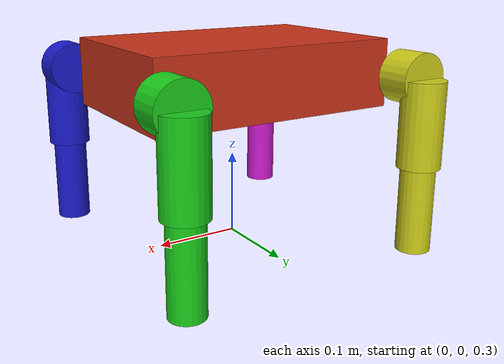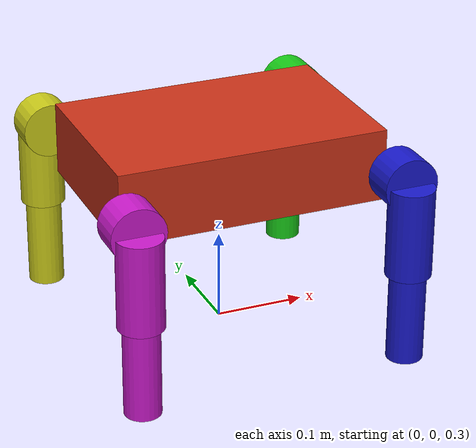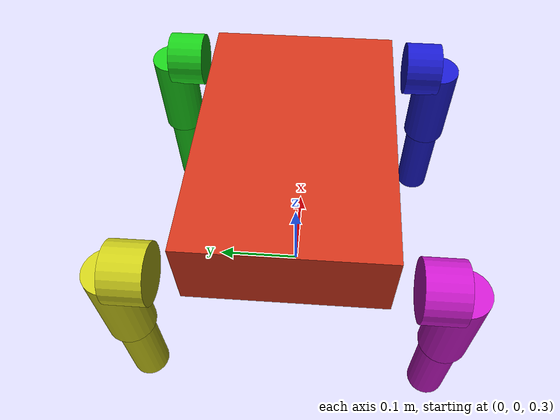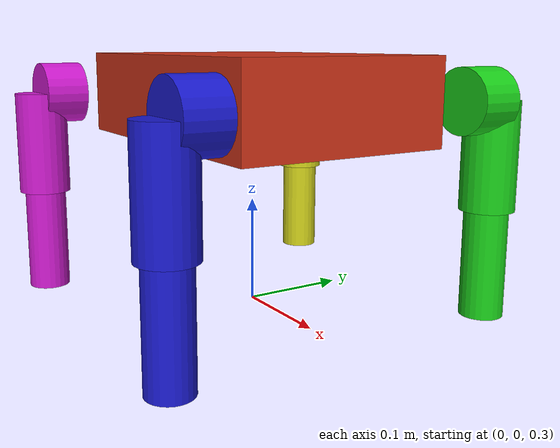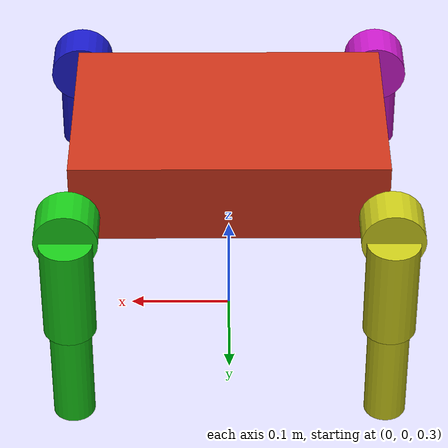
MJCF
<mujoco model="suspended_quadruped">
  <compiler angle="degree" coordinate="local" inertiafromgeom="true"/>
  <!-- Gravity can be left on or off, it won't matter since the base is fixed -->
  <option integrator="RK4" timestep="0.01" gravity="0 0 -9.81"/>

  <default>
    <joint armature="1" damping="1" limited="true"/>
    <geom conaffinity="0" condim="3" density="5.0" friction="1 0.5 0.5" rgba="0.8 0.6 0.4 1"/>
  </default>

  <asset>
    <texture type="skybox" builtin="gradient" rgb1=".4 .5 .6" rgb2="0 0 0" width="100" height="100"/>
  </asset>

  <worldbody>
    <body name="torso" pos="0 0 0.5">
      <geom name="torso_geom" type="box" size="0.15 0.1 0.04" rgba=".8 .2 .1 1"/>

      <!-- All leg bodies are defined relative to the now-fixed torso -->

      <!-- Front-Left Leg -->
      <body name="FL_hip" pos="0.15 0.12 0">
        <joint name="FL_hip_joint" type="hinge" axis="1 0 0" pos="0 0 0" range="-45 45"/>
        <geom type="cylinder" size="0.03 0.02" fromto="0 0 0 0 0.04 0" rgba=".1 .8 .1 1"/>
        <body name="FL_thigh" pos="0 0.04 0">
          <joint name="FL_thigh_joint" type="hinge" axis="0 1 0" pos="0 0 0" range="-120 120"/>
          <geom type="cylinder" size="0.025 0.1" fromto="0 0 0 0 0 -0.1" rgba=".1 .8 .1 1"/>
          <body name="FL_calf" pos="0 0 -0.1">
            <joint name="FL_calf_joint" type="hinge" axis="0 1 0" pos="0 0 0" range="-150 -30"/>
            <geom type="cylinder" size="0.02 0.1" fromto="0 0 0 0 0 -0.1" rgba=".1 .8 .1 1"/>
          </body>
        </body>
      </body>

      <!-- Front-Right Leg (and others...) -->
       <body name="FR_hip" pos="0.15 -0.12 0">
        <joint name="FR_hip_joint" type="hinge" axis="1 0 0" pos="0 0 0" range="-45 45"/>
        <geom type="cylinder" size="0.03 0.02" fromto="0 0 0 0 -0.04 0" rgba=".1 .1 .8 1"/>
        <body name="FR_thigh" pos="0 -0.04 0">
          <joint name="FR_thigh_joint" type="hinge" axis="0 1 0" pos="0 0 0" range="-120 120"/>
          <geom type="cylinder" size="0.025 0.1" fromto="0 0 0 0 0 -0.1" rgba=".1 .1 .8 1"/>
          <body name="FR_calf" pos="0 0 -0.1">
            <joint name="FR_calf_joint" type="hinge" axis="0 1 0" pos="0 0 0" range="-150 -30"/>
            <geom type="cylinder" size="0.02 0.1" fromto="0 0 0 0 0 -0.1" rgba=".1 .1 .8 1"/>
          </body>
        </body>
      </body>

      <body name="RL_hip" pos="-0.15 0.12 0">
        <joint name="RL_hip_joint" type="hinge" axis="1 0 0" pos="0 0 0" range="-45 45"/>
        <geom type="cylinder" size="0.03 0.02" fromto="0 0 0 0 0.04 0" rgba=".8 .8 .1 1"/>
        <body name="RL_thigh" pos="0 0.04 0">
          <joint name="RL_thigh_joint" type="hinge" axis="0 1 0" pos="0 0 0" range="-120 120"/>
          <geom type="cylinder" size="0.025 0.1" fromto="0 0 0 0 0 -0.1" rgba=".8 .8 .1 1"/>
          <body name="RL_calf" pos="0 0 -0.1">
            <joint name="RL_calf_joint" type="hinge" axis="0 1 0" pos="0 0 0" range="-150 -30"/>
            <geom type="cylinder" size="0.02 0.1" fromto="0 0 0 0 0 -0.1" rgba=".8 .8 .1 1"/>
          </body>
        </body>
      </body>

      <body name="RR_hip" pos="-0.15 -0.12 0">
        <joint name="RR_hip_joint" type="hinge" axis="1 0 0" pos="0 0 0" range="-45 45"/>
        <geom type="cylinder" size="0.03 0.02" fromto="0 0 0 0 -0.04 0" rgba=".8 .1 .8 1"/>
        <body name="RR_thigh" pos="0 -0.04 0">
          <joint name="RR_thigh_joint" type="hinge" axis="0 1 0" pos="0 0 0" range="-120 120"/>
          <geom type="cylinder" size="0.025 0.1" fromto="0 0 0 0 0 -0.1" rgba=".8 .1 .8 1"/>
          <body name="RR_calf" pos="0 0 -0.1">
            <joint name="RR_calf_joint" type="hinge" axis="0 1 0" pos="0 0 0" range="-150 -30"/>
            <geom type="cylinder" size="0.02 0.1" fromto="0 0 0 0 0 -0.1" rgba=".8 .1 .8 1"/>
          </body>
        </body>
      </body>
    </body>
  </worldbody>

  <actuator>
      <motor joint="FL_hip_joint"   ctrllimited="true" ctrlrange="-10.0 10.0" gear="10"/>
      <motor joint="FL_thigh_joint" ctrllimited="true" ctrlrange="-10.0 10.0" gear="10"/>
      <motor joint="FL_calf_joint"  ctrllimited="true" ctrlrange="-10.0 10.0" gear="10"/>
      <motor joint="FR_hip_joint"   ctrllimited="true" ctrlrange="-10.0 10.0" gear="10"/>
      <motor joint="FR_thigh_joint" ctrllimited="true" ctrlrange="-10.0 10.0" gear="10"/>
      <motor joint="FR_calf_joint"  ctrllimited="true" ctrlrange="-10.0 10.0" gear="10"/>
      <motor joint="RL_hip_joint"   ctrllimited="true" ctrlrange="-10.0 10.0" gear="10"/>
      <motor joint="RL_thigh_joint" ctrllimited="true" ctrlrange="-10.0 10.0" gear="10"/>
      <motor joint="RL_calf_joint"  ctrllimited="true" ctrlrange="-10.0 10.0" gear="10"/>
      <motor joint="RR_hip_joint"   ctrllimited="true" ctrlrange="-10.0 10.0" gear="10"/>
      <motor joint="RR_thigh_joint" ctrllimited="true" ctrlrange="-10.0 10.0" gear="10"/>
      <motor joint="RR_calf_joint"  ctrllimited="true" ctrlrange="-10.0 10.0" gear="10"/>
  </actuator>
</mujoco>
